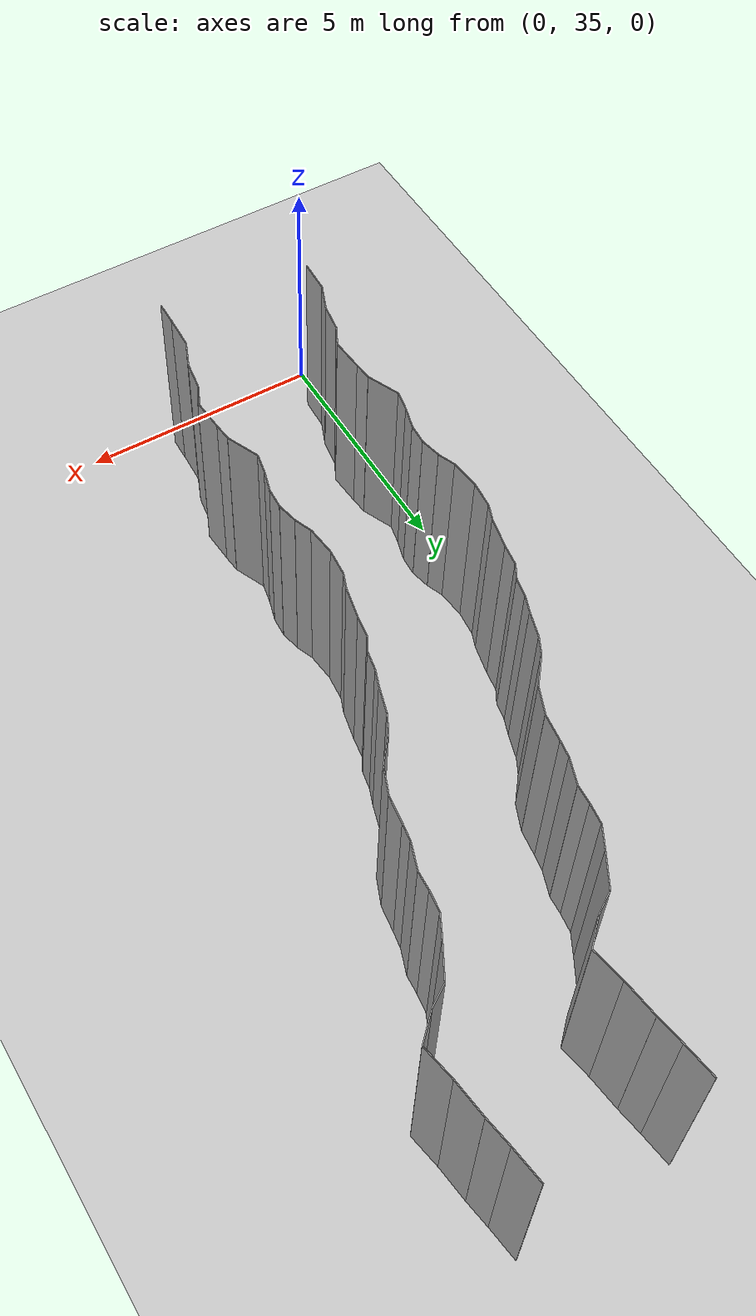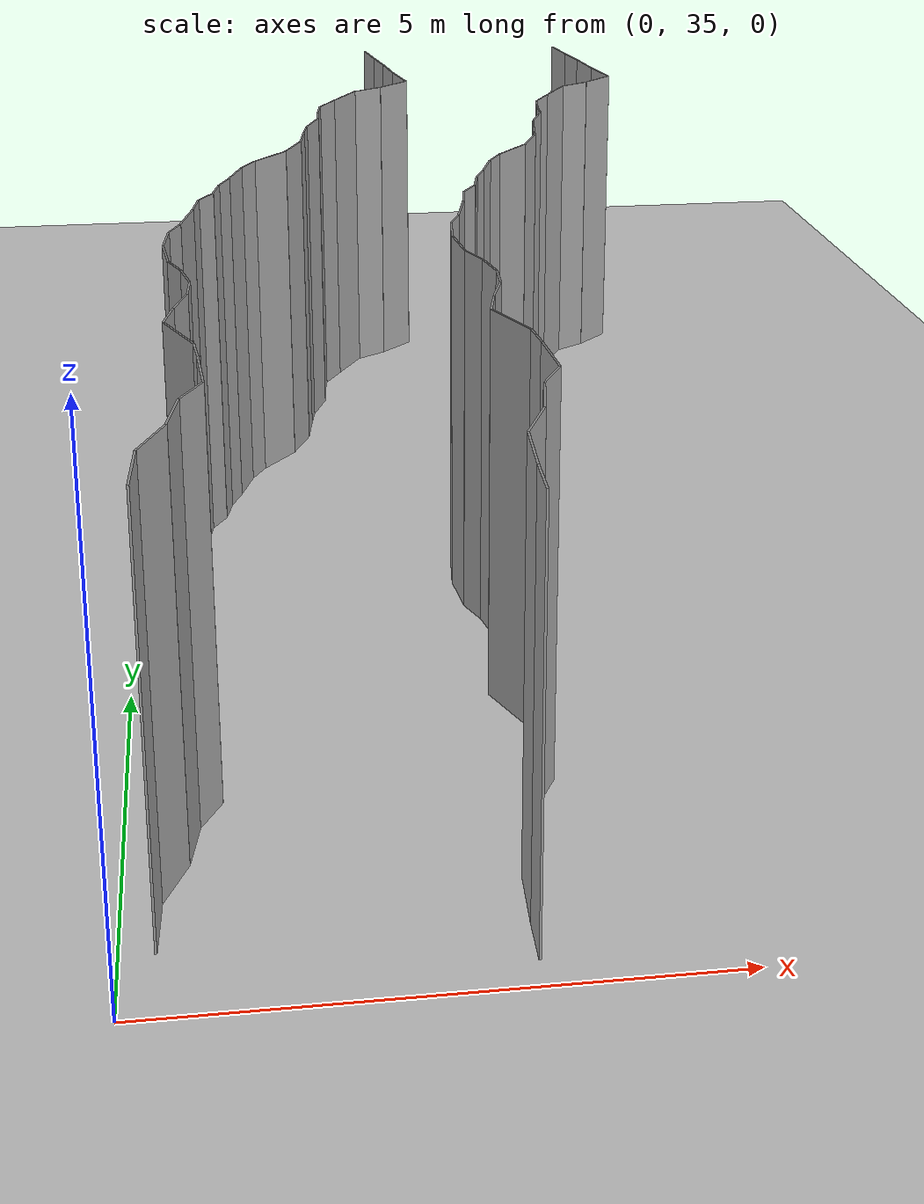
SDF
<sdf version="1.6">
 <world name="default">
  <model name="ground_plane">
   <static>1</static>
   <link name="link">
    <collision name="collision">
     <geometry><plane><normal>0 0 1</normal><size>200 200</size></plane></geometry>
     <surface><friction><ode><mu>100</mu><mu2>50</mu2></ode></friction></surface>
    </collision>
    <visual name="visual">
     <cast_shadows>0</cast_shadows>
     <geometry><plane><normal>0 0 1</normal><size>200 200</size></plane></geometry>
     <material>
      <script><uri>file://media/materials/scripts/gazebo.material</uri><name>Gazebo/Grey</name></script>
     </material>
    </visual>
   </link>
   <pose>0 100 0 0 -0 0</pose>
  </model>
  <model name="wall_149">
   <static>1</static>
   <pose>3.2877991269305835 35.559399122598116 2 0 0 -0.026463156592565526</pose>
   <link name="link">
    <collision name="collision"><geometry><box><size>0.02 0.468631213947 4</size></box></geometry></collision>
    <visual name="visual">
     <material>
      <script><name>Gazebo/Grey</name><uri>file://media/materials/scripts/gazebo.material</uri></script>
     </material>
     <geometry><box><size>0.02 0.468631213947 4</size></box></geometry>
    </visual>
   </link>
  </model>
  <model name="wall_150">
   <static>1</static>
   <pose>0.31203408579567177 36.12762575285036 2 0 0 -0.05394559303966692</pose>
   <link name="link">
    <collision name="collision"><geometry><box><size>0.02 0.668959270074 4</size></box></geometry></collision>
    <visual name="visual">
     <material>
      <script><name>Gazebo/Grey</name><uri>file://media/materials/scripts/gazebo.material</uri></script>
     </material>
     <geometry><box><size>0.02 0.668959270074 4</size></box></geometry>
    </visual>
   </link>
  </model>
  <model name="wall_151">
   <static>1</static>
   <pose>3.3120340857956716 36.12762575285036 2 0 0 -0.05394559303966692</pose>
   <link name="link">
    <collision name="collision"><geometry><box><size>0.02 0.668959270074 4</size></box></geometry></collision>
    <visual name="visual">
     <material>
      <script><name>Gazebo/Grey</name><uri>file://media/materials/scripts/gazebo.material</uri></script>
     </material>
     <geometry><box><size>0.02 0.668959270074 4</size></box></geometry>
    </visual>
   </link>
  </model>
  <model name="wall_152">
   <static>1</static>
   <pose>0.44260765063679364 36.72528675138836 2 0 0 -0.4034107602828484</pose>
   <link name="link">
    <collision name="collision"><geometry><box><size>0.02 0.573361035024 4</size></box></geometry></collision>
    <visual name="visual">
     <material>
      <script><name>Gazebo/Grey</name><uri>file://media/materials/scripts/gazebo.material</uri></script>
     </material>
     <geometry><box><size>0.02 0.573361035024 4</size></box></geometry>
    </visual>
   </link>
  </model>
  <model name="wall_153">
   <static>1</static>
   <pose>3.4426076506367935 36.72528675138836 2 0 0 -0.4034107602828484</pose>
   <link name="link">
    <collision name="collision"><geometry><box><size>0.02 0.573361035024 4</size></box></geometry></collision>
    <visual name="visual">
     <material>
      <script><name>Gazebo/Grey</name><uri>file://media/materials/scripts/gazebo.material</uri></script>
     </material>
     <geometry><box><size>0.02 0.573361035024 4</size></box></geometry>
    </visual>
   </link>
  </model>
  <model name="wall_154">
   <static>1</static>
   <pose>0.6018482128548951 37.26850839531144 2 0 0 -0.16553033487914698</pose>
   <link name="link">
    <collision name="collision"><geometry><box><size>0.02 0.566855708172 4</size></box></geometry></collision>
    <visual name="visual">
     <material>
      <script><name>Gazebo/Grey</name><uri>file://media/materials/scripts/gazebo.material</uri></script>
     </material>
     <geometry><box><size>0.02 0.566855708172 4</size></box></geometry>
    </visual>
   </link>
  </model>
  <model name="wall_155">
   <static>1</static>
   <pose>3.601848212854895 37.26850839531144 2 0 0 -0.16553033487914698</pose>
   <link name="link">
    <collision name="collision"><geometry><box><size>0.02 0.566855708172 4</size></box></geometry></collision>
    <visual name="visual">
     <material>
      <script><name>Gazebo/Grey</name><uri>file://media/materials/scripts/gazebo.material</uri></script>
     </material>
     <geometry><box><size>0.02 0.566855708172 4</size></box></geometry>
    </visual>
   </link>
  </model>
  <model name="wall_156">
   <static>1</static>
   <pose>0.7500791653939439 37.74088112316565 2 0 0 -0.48466192193518914</pose>
   <link name="link">
    <collision name="collision"><geometry><box><size>0.02 0.435831675742 4</size></box></geometry></collision>
    <visual name="visual">
     <material>
      <script><name>Gazebo/Grey</name><uri>file://media/materials/scripts/gazebo.material</uri></script>
     </material>
     <geometry><box><size>0.02 0.435831675742 4</size></box></geometry>
    </visual>
   </link>
  </model>
  <model name="wall_157">
   <static>1</static>
   <pose>3.750079165393944 37.74088112316565 2 0 0 -0.48466192193518914</pose>
   <link name="link">
    <collision name="collision"><geometry><box><size>0.02 0.435831675742 4</size></box></geometry></collision>
    <visual name="visual">
     <material>
      <script><name>Gazebo/Grey</name><uri>file://media/materials/scripts/gazebo.material</uri></script>
     </material>
     <geometry><box><size>0.02 0.435831675742 4</size></box></geometry>
    </visual>
   </link>
  </model>
  <model name="wall_158">
   <static>1</static>
   <pose>0.8308079642646513 38.2677082408172 2 0 0 0.062194234843771956</pose>
   <link name="link">
    <collision name="collision"><geometry><box><size>0.02 0.669310268206 4</size></box></geometry></collision>
    <visual name="visual">
     <material>
      <script><name>Gazebo/Grey</name><uri>file://media/materials/scripts/gazebo.material</uri></script>
     </material>
     <geometry><box><size>0.02 0.669310268206 4</size></box></geometry>
    </visual>
   </link>
  </model>
  <model name="wall_159">
   <static>1</static>
   <pose>3.8308079642646513 38.2677082408172 2 0 0 0.062194234843771956</pose>
   <link name="link">
    <collision name="collision"><geometry><box><size>0.02 0.669310268206 4</size></box></geometry></collision>
    <visual name="visual">
     <material>
      <script><name>Gazebo/Grey</name><uri>file://media/materials/scripts/gazebo.material</uri></script>
     </material>
     <geometry><box><size>0.02 0.669310268206 4</size></box></geometry>
    </visual>
   </link>
  </model>
  <model name="wall_160">
   <static>1</static>
   <pose>0.7942090987900006 38.77652343408318 2 0 0 0.09013281562225559</pose>
   <link name="link">
    <collision name="collision"><geometry><box><size>0.02 0.351039130901 4</size></box></geometry></collision>
    <visual name="visual">
     <material>
      <script><name>Gazebo/Grey</name><uri>file://media/materials/scripts/gazebo.material</uri></script>
     </material>
     <geometry><box><size>0.02 0.351039130901 4</size></box></geometry>
    </visual>
   </link>
  </model>
  <model name="wall_161">
   <static>1</static>
   <pose>3.7942090987900006 38.77652343408318 2 0 0 0.09013281562225559</pose>
   <link name="link">
    <collision name="collision"><geometry><box><size>0.02 0.351039130901 4</size></box></geometry></collision>
    <visual name="visual">
     <material>
      <script><name>Gazebo/Grey</name><uri>file://media/materials/scripts/gazebo.material</uri></script>
     </material>
     <geometry><box><size>0.02 0.351039130901 4</size></box></geometry>
    </visual>
   </link>
  </model>
  <model name="wall_162">
   <static>1</static>
   <pose>0.6432615742895809 39.27190175349707 2 0 0 0.3989767932897069</pose>
   <link name="link">
    <collision name="collision"><geometry><box><size>0.02 0.695790559689 4</size></box></geometry></collision>
    <visual name="visual">
     <material>
      <script><name>Gazebo/Grey</name><uri>file://media/materials/scripts/gazebo.material</uri></script>
     </material>
     <geometry><box><size>0.02 0.695790559689 4</size></box></geometry>
    </visual>
   </link>
  </model>
  <model name="wall_163">
   <static>1</static>
   <pose>3.643261574289581 39.27190175349707 2 0 0 0.3989767932897069</pose>
   <link name="link">
    <collision name="collision"><geometry><box><size>0.02 0.695790559689 4</size></box></geometry></collision>
    <visual name="visual">
     <material>
      <script><name>Gazebo/Grey</name><uri>file://media/materials/scripts/gazebo.material</uri></script>
     </material>
     <geometry><box><size>0.02 0.695790559689 4</size></box></geometry>
    </visual>
   </link>
  </model>
  <model name="wall_164">
   <static>1</static>
   <pose>0.5511167380459014 39.793158702301895 2 0 0 -0.2110930640101602</pose>
   <link name="link">
    <collision name="collision"><geometry><box><size>0.02 0.410483159102 4</size></box></geometry></collision>
    <visual name="visual">
     <material>
      <script><name>Gazebo/Grey</name><uri>file://media/materials/scripts/gazebo.material</uri></script>
     </material>
     <geometry><box><size>0.02 0.410483159102 4</size></box></geometry>
    </visual>
   </link>
  </model>
  <model name="wall_165">
   <static>1</static>
   <pose>3.5511167380459012 39.793158702301895 2 0 0 -0.2110930640101602</pose>
   <link name="link">
    <collision name="collision"><geometry><box><size>0.02 0.410483159102 4</size></box></geometry></collision>
    <visual name="visual">
     <material>
      <script><name>Gazebo/Grey</name><uri>file://media/materials/scripts/gazebo.material</uri></script>
     </material>
     <geometry><box><size>0.02 0.410483159102 4</size></box></geometry>
    </visual>
   </link>
  </model>
  <model name="wall_166">
   <static>1</static>
   <pose>0.6588406192500846 40.20923135092259 2 0 0 -0.2918987676092697</pose>
   <link name="link">
    <collision name="collision"><geometry><box><size>0.02 0.449800787078 4</size></box></geometry></collision>
    <visual name="visual">
     <material>
      <script><name>Gazebo/Grey</name><uri>file://media/materials/scripts/gazebo.material</uri></script>
     </material>
     <geometry><box><size>0.02 0.449800787078 4</size></box></geometry>
    </visual>
   </link>
  </model>
  <model name="wall_167">
   <static>1</static>
   <pose>3.6588406192500846 40.20923135092259 2 0 0 -0.2918987676092697</pose>
   <link name="link">
    <collision name="collision"><geometry><box><size>0.02 0.449800787078 4</size></box></geometry></collision>
    <visual name="visual">
     <material>
      <script><name>Gazebo/Grey</name><uri>file://media/materials/scripts/gazebo.material</uri></script>
     </material>
     <geometry><box><size>0.02 0.449800787078 4</size></box></geometry>
    </visual>
   </link>
  </model>
  <model name="wall_168">
   <static>1</static>
   <pose>0.7355247303508693 40.6246656892339 2 0 0 -0.05973595160616644</pose>
   <link name="link">
    <collision name="collision"><geometry><box><size>0.02 0.400809735323 4</size></box></geometry></collision>
    <visual name="visual">
     <material>
      <script><name>Gazebo/Grey</name><uri>file://media/materials/scripts/gazebo.material</uri></script>
     </material>
     <geometry><box><size>0.02 0.400809735323 4</size></box></geometry>
    </visual>
   </link>
  </model>
  <model name="wall_169">
   <static>1</static>
   <pose>3.7355247303508694 40.6246656892339 2 0 0 -0.05973595160616644</pose>
   <link name="link">
    <collision name="collision"><geometry><box><size>0.02 0.400809735323 4</size></box></geometry></collision>
    <visual name="visual">
     <material>
      <script><name>Gazebo/Grey</name><uri>file://media/materials/scripts/gazebo.material</uri></script>
     </material>
     <geometry><box><size>0.02 0.400809735323 4</size></box></geometry>
    </visual>
   </link>
  </model>
  <model name="wall_170">
   <static>1</static>
   <pose>0.7068852428317287 41.02942710381114 2 0 0 0.19580251424917006</pose>
   <link name="link">
    <collision name="collision"><geometry><box><size>0.02 0.417403816082 4</size></box></geometry></collision>
    <visual name="visual">
     <material>
      <script><name>Gazebo/Grey</name><uri>file://media/materials/scripts/gazebo.material</uri></script>
     </material>
     <geometry><box><size>0.02 0.417403816082 4</size></box></geometry>
    </visual>
   </link>
  </model>
  <model name="wall_171">
   <static>1</static>
   <pose>3.7068852428317287 41.02942710381114 2 0 0 0.19580251424917006</pose>
   <link name="link">
    <collision name="collision"><geometry><box><size>0.02 0.417403816082 4</size></box></geometry></collision>
    <visual name="visual">
     <material>
      <script><name>Gazebo/Grey</name><uri>file://media/materials/scripts/gazebo.material</uri></script>
     </material>
     <geometry><box><size>0.02 0.417403816082 4</size></box></geometry>
    </visual>
   </link>
  </model>
  <model name="wall_172">
   <static>1</static>
   <pose>0.6006486629131489 41.40416115038652 2 0 0 0.3684055553651847</pose>
   <link name="link">
    <collision name="collision"><geometry><box><size>0.02 0.364496830488 4</size></box></geometry></collision>
    <visual name="visual">
     <material>
      <script><name>Gazebo/Grey</name><uri>file://media/materials/scripts/gazebo.material</uri></script>
     </material>
     <geometry><box><size>0.02 0.364496830488 4</size></box></geometry>
    </visual>
   </link>
  </model>
  <model name="wall_173">
   <static>1</static>
   <pose>3.600648662913149 41.40416115038652 2 0 0 0.3684055553651847</pose>
   <link name="link">
    <collision name="collision"><geometry><box><size>0.02 0.364496830488 4</size></box></geometry></collision>
    <visual name="visual">
     <material>
      <script><name>Gazebo/Grey</name><uri>file://media/materials/scripts/gazebo.material</uri></script>
     </material>
     <geometry><box><size>0.02 0.364496830488 4</size></box></geometry>
    </visual>
   </link>
  </model>
  <model name="wall_174">
   <static>1</static>
   <pose>0.5071017184080866 41.86280220414468 2 0 0 0.09641557081604077</pose>
   <link name="link">
    <collision name="collision"><geometry><box><size>0.02 0.579935458674 4</size></box></geometry></collision>
    <visual name="visual">
     <material>
      <script><name>Gazebo/Grey</name><uri>file://media/materials/scripts/gazebo.material</uri></script>
     </material>
     <geometry><box><size>0.02 0.579935458674 4</size></box></geometry>
    </visual>
   </link>
  </model>
  <model name="wall_175">
   <static>1</static>
   <pose>3.5071017184080864 41.86280220414468 2 0 0 0.09641557081604077</pose>
   <link name="link">
    <collision name="collision"><geometry><box><size>0.02 0.579935458674 4</size></box></geometry></collision>
    <visual name="visual">
     <material>
      <script><name>Gazebo/Grey</name><uri>file://media/materials/scripts/gazebo.material</uri></script>
     </material>
     <geometry><box><size>0.02 0.579935458674 4</size></box></geometry>
    </visual>
   </link>
  </model>
  <model name="wall_176">
   <static>1</static>
   <pose>0.5049291876311455 42.41178109172706 2 0 0 -0.0985496962241962</pose>
   <link name="link">
    <collision name="collision"><geometry><box><size>0.02 0.523254637955 4</size></box></geometry></collision>
    <visual name="visual">
     <material>
      <script><name>Gazebo/Grey</name><uri>file://media/materials/scripts/gazebo.material</uri></script>
     </material>
     <geometry><box><size>0.02 0.523254637955 4</size></box></geometry>
    </visual>
   </link>
  </model>
  <model name="wall_177">
   <static>1</static>
   <pose>3.5049291876311455 42.41178109172706 2 0 0 -0.0985496962241962</pose>
   <link name="link">
    <collision name="collision"><geometry><box><size>0.02 0.523254637955 4</size></box></geometry></collision>
    <visual name="visual">
     <material>
      <script><name>Gazebo/Grey</name><uri>file://media/materials/scripts/gazebo.material</uri></script>
     </material>
     <geometry><box><size>0.02 0.523254637955 4</size></box></geometry>
    </visual>
   </link>
  </model>
  <model name="wall_178">
   <static>1</static>
   <pose>0.5910713974646208 42.82535507503276 2 0 0 -0.37551245991777493</pose>
   <link name="link">
    <collision name="collision"><geometry><box><size>0.02 0.329383732998 4</size></box></geometry></collision>
    <visual name="visual">
     <material>
      <script><name>Gazebo/Grey</name><uri>file://media/materials/scripts/gazebo.material</uri></script>
     </material>
     <geometry><box><size>0.02 0.329383732998 4</size></box></geometry>
    </visual>
   </link>
  </model>
  <model name="wall_179">
   <static>1</static>
   <pose>3.5910713974646207 42.82535507503276 2 0 0 -0.37551245991777493</pose>
   <link name="link">
    <collision name="collision"><geometry><box><size>0.02 0.329383732998 4</size></box></geometry></collision>
    <visual name="visual">
     <material>
      <script><name>Gazebo/Grey</name><uri>file://media/materials/scripts/gazebo.material</uri></script>
     </material>
     <geometry><box><size>0.02 0.329383732998 4</size></box></geometry>
    </visual>
   </link>
  </model>
  <model name="wall_180">
   <static>1</static>
   <pose>0.7202455429049296 43.28529222707301 2 0 0 -0.2205735192948872</pose>
   <link name="link">
    <collision name="collision"><geometry><box><size>0.02 0.628673515809 4</size></box></geometry></collision>
    <visual name="visual">
     <material>
      <script><name>Gazebo/Grey</name><uri>file://media/materials/scripts/gazebo.material</uri></script>
     </material>
     <geometry><box><size>0.02 0.628673515809 4</size></box></geometry>
    </visual>
   </link>
  </model>
  <model name="wall_181">
   <static>1</static>
   <pose>3.7202455429049297 43.28529222707301 2 0 0 -0.2205735192948872</pose>
   <link name="link">
    <collision name="collision"><geometry><box><size>0.02 0.628673515809 4</size></box></geometry></collision>
    <visual name="visual">
     <material>
      <script><name>Gazebo/Grey</name><uri>file://media/materials/scripts/gazebo.material</uri></script>
     </material>
     <geometry><box><size>0.02 0.628673515809 4</size></box></geometry>
    </visual>
   </link>
  </model>
  <model name="wall_182">
   <static>1</static>
   <pose>0.8201491576867932 43.796707992248415 2 0 0 -0.15092416635723108</pose>
   <link name="link">
    <collision name="collision"><geometry><box><size>0.02 0.41409665784 4</size></box></geometry></collision>
    <visual name="visual">
     <material>
      <script><name>Gazebo/Grey</name><uri>file://media/materials/scripts/gazebo.material</uri></script>
     </material>
     <geometry><box><size>0.02 0.41409665784 4</size></box></geometry>
    </visual>
   </link>
  </model>
  <model name="wall_183">
   <static>1</static>
   <pose>3.820149157686793 43.796707992248415 2 0 0 -0.15092416635723108</pose>
   <link name="link">
    <collision name="collision"><geometry><box><size>0.02 0.41409665784 4</size></box></geometry></collision>
    <visual name="visual">
     <material>
      <script><name>Gazebo/Grey</name><uri>file://media/materials/scripts/gazebo.material</uri></script>
     </material>
     <geometry><box><size>0.02 0.41409665784 4</size></box></geometry>
    </visual>
   </link>
  </model>
  <model name="wall_184">
   <static>1</static>
   <pose>0.9332917021259545 44.143990157371675 2 0 0 -0.5219642500583204</pose>
   <link name="link">
    <collision name="collision"><geometry><box><size>0.02 0.328981587045 4</size></box></geometry></collision>
    <visual name="visual">
     <material>
      <script><name>Gazebo/Grey</name><uri>file://media/materials/scripts/gazebo.material</uri></script>
     </material>
     <geometry><box><size>0.02 0.328981587045 4</size></box></geometry>
    </visual>
   </link>
  </model>
  <model name="wall_185">
   <static>1</static>
   <pose>3.9332917021259544 44.143990157371675 2 0 0 -0.5219642500583204</pose>
   <link name="link">
    <collision name="collision"><geometry><box><size>0.02 0.328981587045 4</size></box></geometry></collision>
    <visual name="visual">
     <material>
      <script><name>Gazebo/Grey</name><uri>file://media/materials/scripts/gazebo.material</uri></script>
     </material>
     <geometry><box><size>0.02 0.328981587045 4</size></box></geometry>
    </visual>
   </link>
  </model>
  <model name="wall_186">
   <static>1</static>
   <pose>1.0517946876195408 44.46929248088175 2 0 0 -0.1971196141964637</pose>
   <link name="link">
    <collision name="collision"><geometry><box><size>0.02 0.372646134989 4</size></box></geometry></collision>
    <visual name="visual">
     <material>
      <script><name>Gazebo/Grey</name><uri>file://media/materials/scripts/gazebo.material</uri></script>
     </material>
     <geometry><box><size>0.02 0.372646134989 4</size></box></geometry>
    </visual>
   </link>
  </model>
  <model name="wall_187">
   <static>1</static>
   <pose>4.051794687619541 44.46929248088175 2 0 0 -0.1971196141964637</pose>
   <link name="link">
    <collision name="collision"><geometry><box><size>0.02 0.372646134989 4</size></box></geometry></collision>
    <visual name="visual">
     <material>
      <script><name>Gazebo/Grey</name><uri>file://media/materials/scripts/gazebo.material</uri></script>
     </material>
     <geometry><box><size>0.02 0.372646134989 4</size></box></geometry>
    </visual>
   </link>
  </model>
  <model name="wall_188">
   <static>1</static>
   <pose>1.150445894800038 44.814834557184966 2 0 0 -0.3646827114315903</pose>
   <link name="link">
    <collision name="collision"><geometry><box><size>0.02 0.348577942719 4</size></box></geometry></collision>
    <visual name="visual">
     <material>
      <script><name>Gazebo/Grey</name><uri>file://media/materials/scripts/gazebo.material</uri></script>
     </material>
     <geometry><box><size>0.02 0.348577942719 4</size></box></geometry>
    </visual>
   </link>
  </model>
  <model name="wall_189">
   <static>1</static>
   <pose>4.150445894800038 44.814834557184966 2 0 0 -0.3646827114315903</pose>
   <link name="link">
    <collision name="collision"><geometry><box><size>0.02 0.348577942719 4</size></box></geometry></collision>
    <visual name="visual">
     <material>
      <script><name>Gazebo/Grey</name><uri>file://media/materials/scripts/gazebo.material</uri></script>
     </material>
     <geometry><box><size>0.02 0.348577942719 4</size></box></geometry>
    </visual>
   </link>
  </model>
  <model name="wall_190">
   <static>1</static>
   <pose>1.2902060578678511 45.22876722236006 2 0 0 -0.29972183868134517</pose>
   <link name="link">
    <collision name="collision"><geometry><box><size>0.02 0.525644885588 4</size></box></geometry></collision>
    <visual name="visual">
     <material>
      <script><name>Gazebo/Grey</name><uri>file://media/materials/scripts/gazebo.material</uri></script>
     </material>
     <geometry><box><size>0.02 0.525644885588 4</size></box></geometry>
    </visual>
   </link>
  </model>
  <model name="wall_191">
   <static>1</static>
   <pose>4.290206057867851 45.22876722236006 2 0 0 -0.29972183868134517</pose>
   <link name="link">
    <collision name="collision"><geometry><box><size>0.02 0.525644885588 4</size></box></geometry></collision>
    <visual name="visual">
     <material>
      <script><name>Gazebo/Grey</name><uri>file://media/materials/scripts/gazebo.material</uri></script>
     </material>
     <geometry><box><size>0.02 0.525644885588 4</size></box></geometry>
    </visual>
   </link>
  </model>
  <model name="wall_192">
   <static>1</static>
   <pose>1.451029198507194 45.638442352625034 2 0 0 -0.48332126573247663</pose>
   <link name="link">
    <collision name="collision"><geometry><box><size>0.02 0.358164842392 4</size></box></geometry></collision>
    <visual name="visual">
     <material>
      <script><name>Gazebo/Grey</name><uri>file://media/materials/scripts/gazebo.material</uri></script>
     </material>
     <geometry><box><size>0.02 0.358164842392 4</size></box></geometry>
    </visual>
   </link>
  </model>
  <model name="wall_193">
   <static>1</static>
   <pose>4.451029198507194 45.638442352625034 2 0 0 -0.48332126573247663</pose>
   <link name="link">
    <collision name="collision"><geometry><box><size>0.02 0.358164842392 4</size></box></geometry></collision>
    <visual name="visual">
     <material>
      <script><name>Gazebo/Grey</name><uri>file://media/materials/scripts/gazebo.material</uri></script>
     </material>
     <geometry><box><size>0.02 0.358164842392 4</size></box></geometry>
    </visual>
   </link>
  </model>
  <model name="wall_194">
   <static>1</static>
   <pose>1.734174330246532 46.04673699663657 2 0 0 -0.6750863638149258</pose>
   <link name="link">
    <collision name="collision"><geometry><box><size>0.02 0.639784859327 4</size></box></geometry></collision>
    <visual name="visual">
     <material>
      <script><name>Gazebo/Grey</name><uri>file://media/materials/scripts/gazebo.material</uri></script>
     </material>
     <geometry><box><size>0.02 0.639784859327 4</size></box></geometry>
    </visual>
   </link>
  </model>
  <model name="wall_195">
   <static>1</static>
   <pose>4.734174330246532 46.04673699663657 2 0 0 -0.6750863638149258</pose>
   <link name="link">
    <collision name="collision"><geometry><box><size>0.02 0.639784859327 4</size></box></geometry></collision>
    <visual name="visual">
     <material>
      <script><name>Gazebo/Grey</name><uri>file://media/materials/scripts/gazebo.material</uri></script>
     </material>
     <geometry><box><size>0.02 0.639784859327 4</size></box></geometry>
    </visual>
   </link>
  </model>
  <model name="wall_196">
   <static>1</static>
   <pose>2.041635334389631 46.55544404449615 2 0 0 -0.39357422670446973</pose>
   <link name="link">
    <collision name="collision"><geometry><box><size>0.02 0.560843862915 4</size></box></geometry></collision>
    <visual name="visual">
     <material>
      <script><name>Gazebo/Grey</name><uri>file://media/materials/scripts/gazebo.material</uri></script>
     </material>
     <geometry><box><size>0.02 0.560843862915 4</size></box></geometry>
    </visual>
   </link>
  </model>
  <model name="wall_197">
   <static>1</static>
   <pose>5.041635334389631 46.55544404449615 2 0 0 -0.39357422670446973</pose>
   <link name="link">
    <collision name="collision"><geometry><box><size>0.02 0.560843862915 4</size></box></geometry></collision>
    <visual name="visual">
     <material>
      <script><name>Gazebo/Grey</name><uri>file://media/materials/scripts/gazebo.material</uri></script>
     </material>
     <geometry><box><size>0.02 0.560843862915 4</size></box></geometry>
    </visual>
   </link>
  </model>
  <model name="wall_198">
   <static>1</static>
   <pose>2.185827036147897 47.077930717971775 2 0 0 -0.1382082790730785</pose>
   <link name="link">
    <collision name="collision"><geometry><box><size>0.02 0.532082922537 4</size></box></geometry></collision>
    <visual name="visual">
     <material>
      <script><name>Gazebo/Grey</name><uri>file://media/materials/scripts/gazebo.material</uri></script>
     </material>
     <geometry><box><size>0.02 0.532082922537 4</size></box></geometry>
    </visual>
   </link>
  </model>
  <model name="wall_199">
   <static>1</static>
   <pose>5.185827036147897 47.077930717971775 2 0 0 -0.1382082790730785</pose>
   <link name="link">
    <collision name="collision"><geometry><box><size>0.02 0.532082922537 4</size></box></geometry></collision>
    <visual name="visual">
     <material>
      <script><name>Gazebo/Grey</name><uri>file://media/materials/scripts/gazebo.material</uri></script>
     </material>
     <geometry><box><size>0.02 0.532082922537 4</size></box></geometry>
    </visual>
   </link>
  </model>
  <model name="wall_200">
   <static>1</static>
   <pose>2.2493618249961957 47.50509730933962 2 0 0 -0.16280307766478544</pose>
   <link name="link">
    <collision name="collision"><geometry><box><size>0.02 0.33171023748 4</size></box></geometry></collision>
    <visual name="visual">
     <material>
      <script><name>Gazebo/Grey</name><uri>file://media/materials/scripts/gazebo.material</uri></script>
     </material>
     <geometry><box><size>0.02 0.33171023748 4</size></box></geometry>
    </visual>
   </link>
  </model>
  <model name="wall_201">
   <static>1</static>
   <pose>5.249361824996196 47.50509730933962 2 0 0 -0.16280307766478544</pose>
   <link name="link">
    <collision name="collision"><geometry><box><size>0.02 0.33171023748 4</size></box></geometry></collision>
    <visual name="visual">
     <material>
      <script><name>Gazebo/Grey</name><uri>file://media/materials/scripts/gazebo.material</uri></script>
     </material>
     <geometry><box><size>0.02 0.33171023748 4</size></box></geometry>
    </visual>
   </link>
  </model>
  <model name="wall_202">
   <static>1</static>
   <pose>2.365793634864435 47.918927450194474 2 0 0 -0.3437449695433146</pose>
   <link name="link">
    <collision name="collision"><geometry><box><size>0.02 0.531425123966 4</size></box></geometry></collision>
    <visual name="visual">
     <material>
      <script><name>Gazebo/Grey</name><uri>file://media/materials/scripts/gazebo.material</uri></script>
     </material>
     <geometry><box><size>0.02 0.531425123966 4</size></box></geometry>
    </visual>
   </link>
  </model>
  <model name="wall_203">
   <static>1</static>
   <pose>5.365793634864435 47.918927450194474 2 0 0 -0.3437449695433146</pose>
   <link name="link">
    <collision name="collision"><geometry><box><size>0.02 0.531425123966 4</size></box></geometry></collision>
    <visual name="visual">
     <material>
      <script><name>Gazebo/Grey</name><uri>file://media/materials/scripts/gazebo.material</uri></script>
     </material>
     <geometry><box><size>0.02 0.531425123966 4</size></box></geometry>
    </visual>
   </link>
  </model>
  <model name="wall_204">
   <static>1</static>
   <pose>2.4668746327864657 48.350683144494205 2 0 0 -0.06342024033663346</pose>
   <link name="link">
    <collision name="collision"><geometry><box><size>0.02 0.363906675739 4</size></box></geometry></collision>
    <visual name="visual">
     <material>
      <script><name>Gazebo/Grey</name><uri>file://media/materials/scripts/gazebo.material</uri></script>
     </material>
     <geometry><box><size>0.02 0.363906675739 4</size></box></geometry>
    </visual>
   </link>
  </model>
  <model name="wall_205">
   <static>1</static>
   <pose>5.466874632786466 48.350683144494205 2 0 0 -0.06342024033663346</pose>
   <link name="link">
    <collision name="collision"><geometry><box><size>0.02 0.363906675739 4</size></box></geometry></collision>
    <visual name="visual">
     <material>
      <script><name>Gazebo/Grey</name><uri>file://media/materials/scripts/gazebo.material</uri></script>
     </material>
     <geometry><box><size>0.02 0.363906675739 4</size></box></geometry>
    </visual>
   </link>
  </model>
  <model name="wall_206">
   <static>1</static>
   <pose>2.504659892640241 48.72724844023717 2 0 0 -0.13384353965061704</pose>
   <link name="link">
    <collision name="collision"><geometry><box><size>0.02 0.39347462222 4</size></box></geometry></collision>
    <visual name="visual">
     <material>
      <script><name>Gazebo/Grey</name><uri>file://media/materials/scripts/gazebo.material</uri></script>
     </material>
     <geometry><box><size>0.02 0.39347462222 4</size></box></geometry>
    </visual>
   </link>
  </model>
  <model name="wall_207">
   <static>1</static>
   <pose>5.504659892640241 48.72724844023717 2 0 0 -0.13384353965061704</pose>
   <link name="link">
    <collision name="collision"><geometry><box><size>0.02 0.39347462222 4</size></box></geometry></collision>
    <visual name="visual">
     <material>
      <script><name>Gazebo/Grey</name><uri>file://media/materials/scripts/gazebo.material</uri></script>
     </material>
     <geometry><box><size>0.02 0.39347462222 4</size></box></geometry>
    </visual>
   </link>
  </model>
  <model name="wall_208">
   <static>1</static>
   <pose>2.641573699089799 49.127240030624584 2 0 0 -0.49495524456400225</pose>
   <link name="link">
    <collision name="collision"><geometry><box><size>0.02 0.465945846235 4</size></box></geometry></collision>
    <visual name="visual">
     <material>
      <script><name>Gazebo/Grey</name><uri>file://media/materials/scripts/gazebo.material</uri></script>
     </material>
     <geometry><box><size>0.02 0.465945846235 4</size></box></geometry>
    </visual>
   </link>
  </model>
  <model name="wall_209">
   <static>1</static>
   <pose>5.641573699089799 49.127240030624584 2 0 0 -0.49495524456400225</pose>
   <link name="link">
    <collision name="collision"><geometry><box><size>0.02 0.465945846235 4</size></box></geometry></collision>
    <visual name="visual">
     <material>
      <script><name>Gazebo/Grey</name><uri>file://media/materials/scripts/gazebo.material</uri></script>
     </material>
     <geometry><box><size>0.02 0.465945846235 4</size></box></geometry>
    </visual>
   </link>
  </model>
  <model name="wall_210">
   <static>1</static>
   <pose>2.9200355880366553 49.6302786812825 2 0 0 -0.5128038026032072</pose>
   <link name="link">
    <collision name="collision"><geometry><box><size>0.02 0.684035529261 4</size></box></geometry></collision>
    <visual name="visual">
     <material>
      <script><name>Gazebo/Grey</name><uri>file://media/materials/scripts/gazebo.material</uri></script>
     </material>
     <geometry><box><size>0.02 0.684035529261 4</size></box></geometry>
    </visual>
   </link>
  </model>
  <model name="wall_211">
   <static>1</static>
   <pose>5.920035588036655 49.6302786812825 2 0 0 -0.5128038026032072</pose>
   <link name="link">
    <collision name="collision"><geometry><box><size>0.02 0.684035529261 4</size></box></geometry></collision>
    <visual name="visual">
     <material>
      <script><name>Gazebo/Grey</name><uri>file://media/materials/scripts/gazebo.material</uri></script>
     </material>
     <geometry><box><size>0.02 0.684035529261 4</size></box></geometry>
    </visual>
   </link>
  </model>
  <model name="wall_212">
   <static>1</static>
   <pose>3.2808867128289796 50.05248114317236 2 0 0 -0.9991863815160623</pose>
   <link name="link">
    <collision name="collision"><geometry><box><size>0.02 0.45907831797 4</size></box></geometry></collision>
    <visual name="visual">
     <material>
      <script><name>Gazebo/Grey</name><uri>file://media/materials/scripts/gazebo.material</uri></script>
     </material>
     <geometry><box><size>0.02 0.45907831797 4</size></box></geometry>
    </visual>
   </link>
  </model>
  <model name="wall_213">
   <static>1</static>
   <pose>6.28088671282898 50.05248114317236 2 0 0 -0.9991863815160623</pose>
   <link name="link">
    <collision name="collision"><geometry><box><size>0.02 0.45907831797 4</size></box></geometry></collision>
    <visual name="visual">
     <material>
      <script><name>Gazebo/Grey</name><uri>file://media/materials/scripts/gazebo.material</uri></script>
     </material>
     <geometry><box><size>0.02 0.45907831797 4</size></box></geometry>
    </visual>
   </link>
  </model>
  <model name="wall_214">
   <static>1</static>
   <pose>3.6836301685665003 50.382655857635804 2 0 0 -0.7942911105317986</pose>
   <link name="link">
    <collision name="collision"><geometry><box><size>0.02 0.587899026917 4</size></box></geometry></collision>
    <visual name="visual">
     <material>
      <script><name>Gazebo/Grey</name><uri>file://media/materials/scripts/gazebo.material</uri></script>
     </material>
     <geometry><box><size>0.02 0.587899026917 4</size></box></geometry>
    </visual>
   </link>
  </model>
  <model name="wall_215">
   <static>1</static>
   <pose>6.6836301685665 50.382655857635804 2 0 0 -0.7942911105317986</pose>
   <link name="link">
    <collision name="collision"><geometry><box><size>0.02 0.587899026917 4</size></box></geometry></collision>
    <visual name="visual">
     <material>
      <script><name>Gazebo/Grey</name><uri>file://media/materials/scripts/gazebo.material</uri></script>
     </material>
     <geometry><box><size>0.02 0.587899026917 4</size></box></geometry>
    </visual>
   </link>
  </model>
  <model name="wall_216">
   <static>1</static>
   <pose>3.8332357465143625 50.91485708796097 2 0 0 0.18216257174120173</pose>
   <link name="link">
    <collision name="collision"><geometry><box><size>0.02 0.663384534174 4</size></box></geometry></collision>
    <visual name="visual">
     <material>
      <script><name>Gazebo/Grey</name><uri>file://media/materials/scripts/gazebo.material</uri></script>
     </material>
     <geometry><box><size>0.02 0.663384534174 4</size></box></geometry>
    </visual>
   </link>
  </model>
  <model name="wall_217">
   <static>1</static>
   <pose>6.8332357465143625 50.91485708796097 2 0 0 0.18216257174120173</pose>
   <link name="link">
    <collision name="collision"><geometry><box><size>0.02 0.663384534174 4</size></box></geometry></collision>
    <visual name="visual">
     <material>
      <script><name>Gazebo/Grey</name><uri>file://media/materials/scripts/gazebo.material</uri></script>
     </material>
     <geometry><box><size>0.02 0.663384534174 4</size></box></geometry>
    </visual>
   </link>
  </model>
  <model name="wall_218">
   <static>1</static>
   <pose>3.730614421562619 51.58811318189934 2 0 0 0.12194709020990041</pose>
   <link name="link">
    <collision name="collision"><geometry><box><size>0.02 0.699297078166 4</size></box></geometry></collision>
    <visual name="visual">
     <material>
      <script><name>Gazebo/Grey</name><uri>file://media/materials/scripts/gazebo.material</uri></script>
     </material>
     <geometry><box><size>0.02 0.699297078166 4</size></box></geometry>
    </visual>
   </link>
  </model>
  <model name="wall_219">
   <static>1</static>
   <pose>6.730614421562619 51.58811318189934 2 0 0 0.12194709020990041</pose>
   <link name="link">
    <collision name="collision"><geometry><box><size>0.02 0.699297078166 4</size></box></geometry></collision>
    <visual name="visual">
     <material>
      <script><name>Gazebo/Grey</name><uri>file://media/materials/scripts/gazebo.material</uri></script>
     </material>
     <geometry><box><size>0.02 0.699297078166 4</size></box></geometry>
    </visual>
   </link>
  </model>
  <model name="wall_220">
   <static>1</static>
   <pose>3.644757490607637 52.20003796506904 2 0 0 0.16212926740945954</pose>
   <link name="link">
    <collision name="collision"><geometry><box><size>0.02 0.536785204199 4</size></box></geometry></collision>
    <visual name="visual">
     <material>
      <script><name>Gazebo/Grey</name><uri>file://media/materials/scripts/gazebo.material</uri></script>
     </material>
     <geometry><box><size>0.02 0.536785204199 4</size></box></geometry>
    </visual>
   </link>
  </model>
  <model name="wall_221">
   <static>1</static>
   <pose>6.6447574906076365 52.20003796506904 2 0 0 0.16212926740945954</pose>
   <link name="link">
    <collision name="collision"><geometry><box><size>0.02 0.536785204199 4</size></box></geometry></collision>
    <visual name="visual">
     <material>
      <script><name>Gazebo/Grey</name><uri>file://media/materials/scripts/gazebo.material</uri></script>
     </material>
     <geometry><box><size>0.02 0.536785204199 4</size></box></geometry>
    </visual>
   </link>
  </model>
  <model name="wall_222">
   <static>1</static>
   <pose>3.55578753254734 52.793382902599305 2 0 0 0.13808046573463822</pose>
   <link name="link">
    <collision name="collision"><geometry><box><size>0.02 0.663257032361 4</size></box></geometry></collision>
    <visual name="visual">
     <material>
      <script><name>Gazebo/Grey</name><uri>file://media/materials/scripts/gazebo.material</uri></script>
     </material>
     <geometry><box><size>0.02 0.663257032361 4</size></box></geometry>
    </visual>
   </link>
  </model>
  <model name="wall_223">
   <static>1</static>
   <pose>6.55578753254734 52.793382902599305 2 0 0 0.13808046573463822</pose>
   <link name="link">
    <collision name="collision"><geometry><box><size>0.02 0.663257032361 4</size></box></geometry></collision>
    <visual name="visual">
     <material>
      <script><name>Gazebo/Grey</name><uri>file://media/materials/scripts/gazebo.material</uri></script>
     </material>
     <geometry><box><size>0.02 0.663257032361 4</size></box></geometry>
    </visual>
   </link>
  </model>
 </world>
</sdf>
